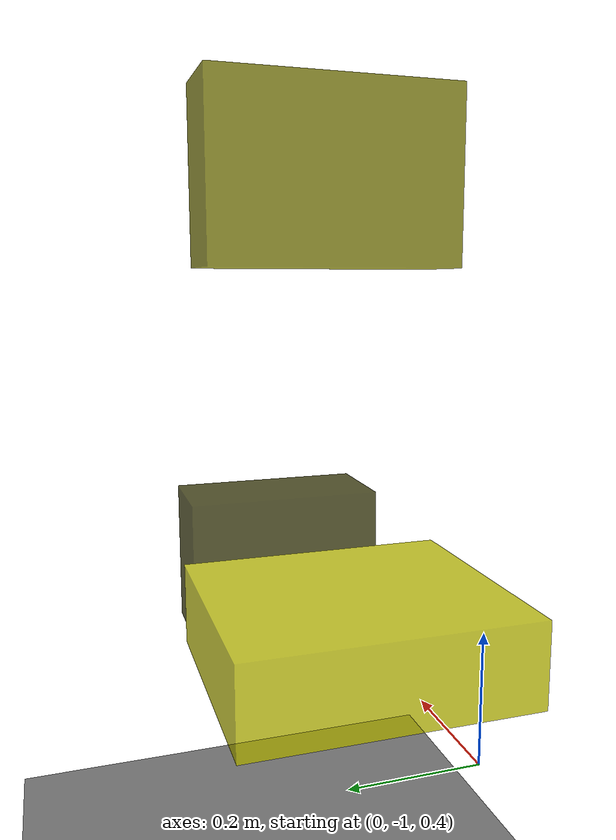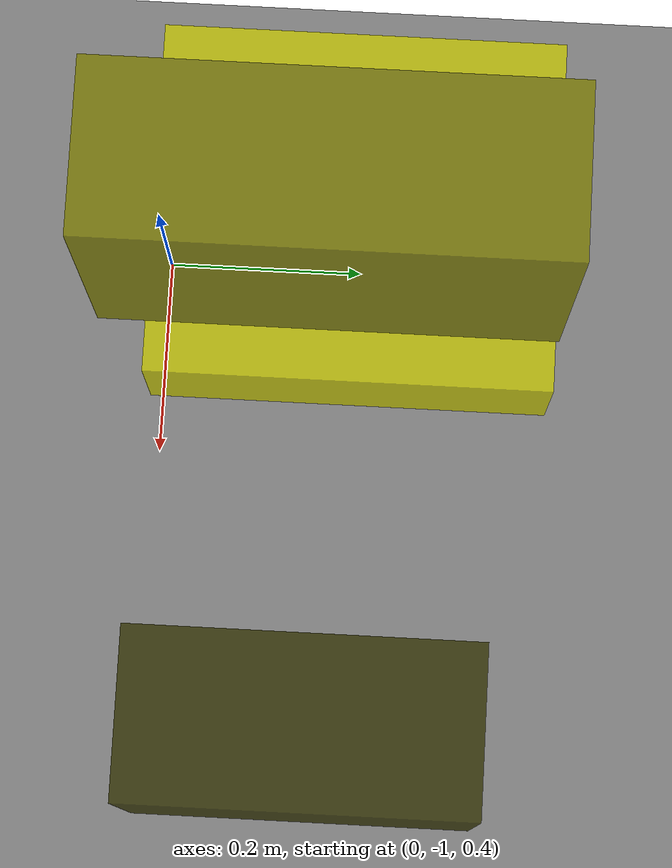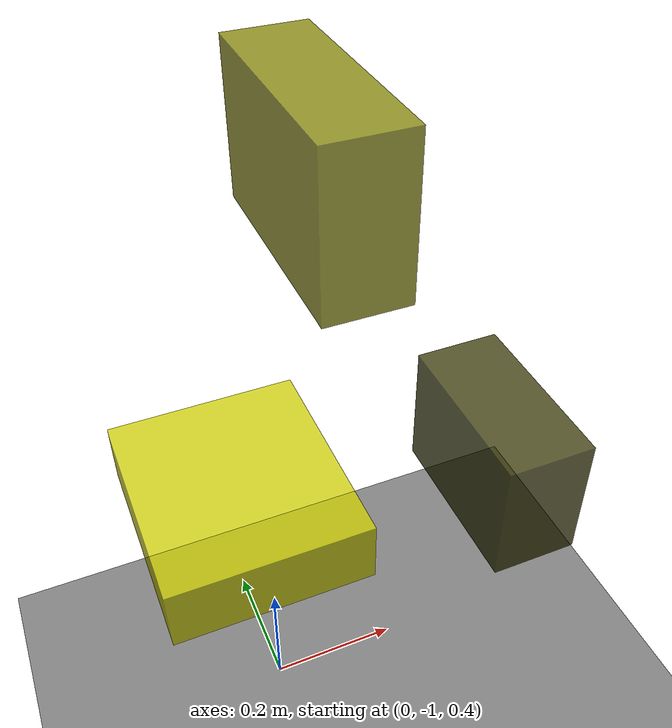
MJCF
<?xml version="1.0"?>
<mujoco model="obstacle_scene">
  <compiler angle="radian" coordinate="local"/>
  <option timestep="0.001" gravity="0 0 -9.81"/>

  <asset>
    <material name="obstacle_mat" rgba="0.8 0.8 0.0 0.8"/>
    <material name="ground_mat" rgba="0.5 0.5 0.5 1"/>
  </asset>

  <worldbody>
    <!-- Ground plane -->
    <geom name="ground" type="plane" size="3 3 0.1" material="ground_mat"/>

    <!-- Obstacles -->
    <body name="obstacle_0" pos="0.495955 -0.831519 0.578284">
      <geom name="obs_0" type="box" size="0.081781 0.168444 0.126701" rgba="0.2 0.2 0.0 0.8"/>
    </body>
    <body name="obstacle_1" pos="0.155112 -0.818110 1.226698">
      <geom name="obs_1" type="box" size="0.064767 0.178554 0.123571" rgba="0.5 0.5 0.0 0.8"/>
    </body>
    <body name="obstacle_2" pos="0.004068 -0.805115 0.626569">
      <geom name="obs_2" type="box" size="0.170243 0.193349 0.058413" rgba="0.8 0.8 0.0 0.8"/>
    </body>
  </worldbody>
</mujoco>
